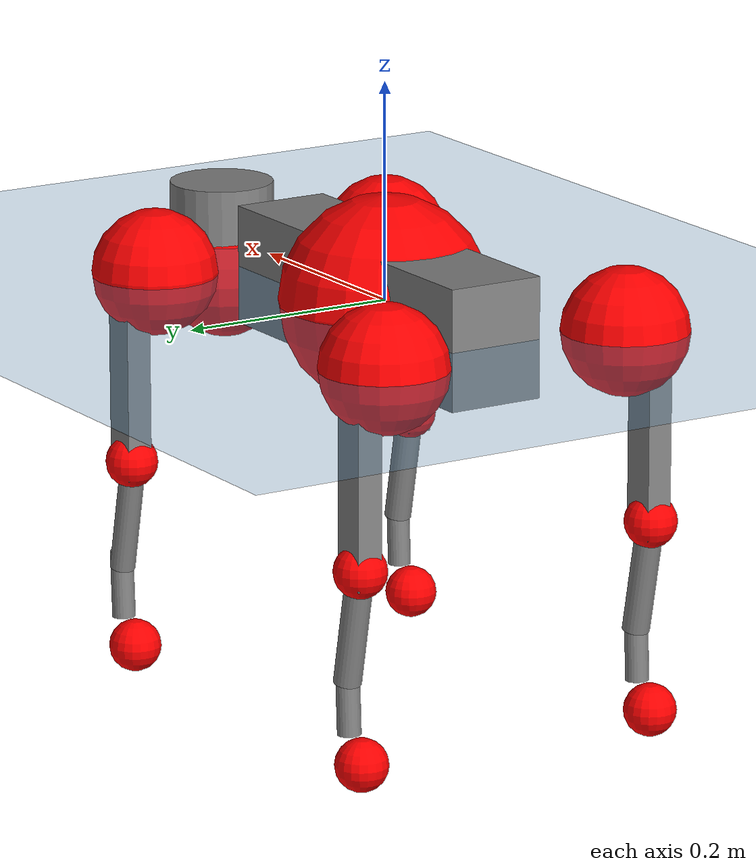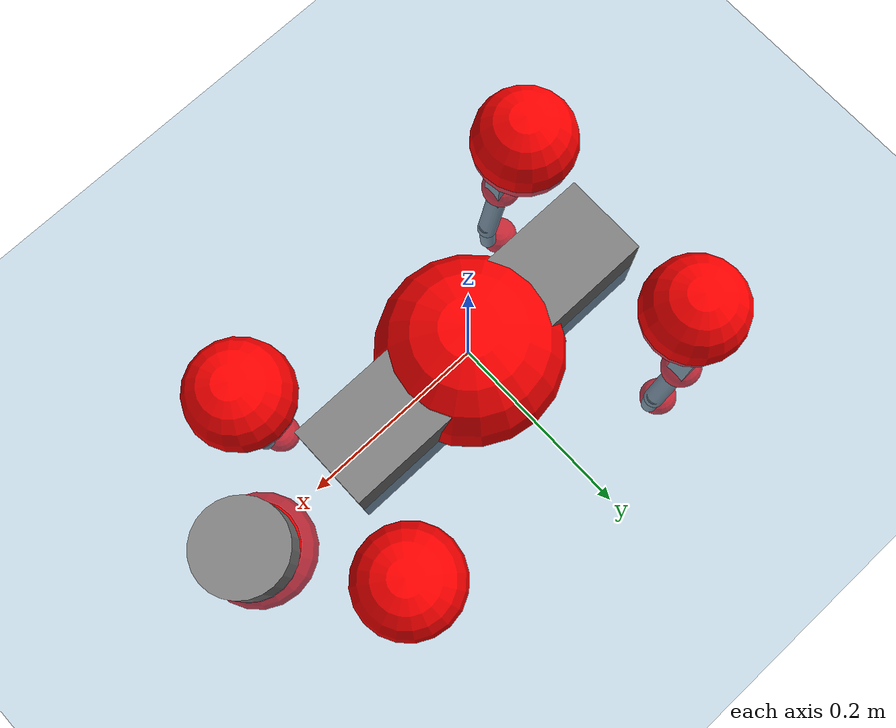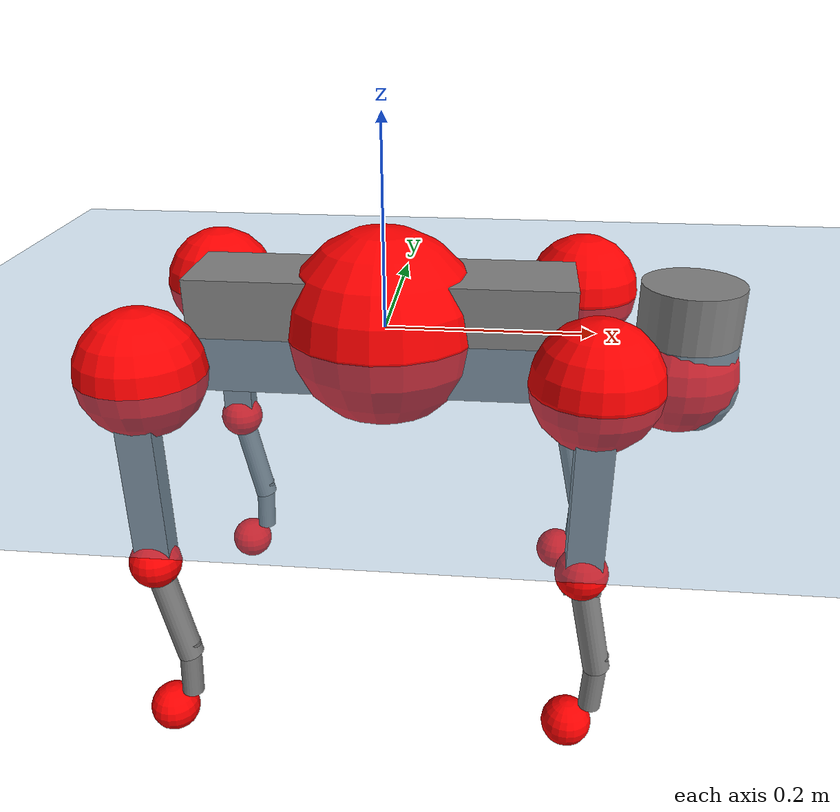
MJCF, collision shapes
<mujoco model="go2">
  <compiler angle="radian" assetdir="assets" balanceinertia="true" inertiafromgeom="false"/>

  <option timestep="0.005" density="1.2" viscosity="2e-05"/>

  <size nkey="1"/>

  <visual>
    <quality shadowsize="8192"/>
    <map shadowclip="0.5"/>
  </visual>

  <default>
    <default class="/">
      <geom contype="0" conaffinity="0" group="1" solref="-1000 -80"/>
      <site size="0.01 0.005 0.005" group="5"/>
      <general forcelimited="true" biastype="affine" gainprm="20" biasprm="0 -20 -0.5"/>
      <default class="go2">
        <joint armature="0.01" damping="0.01" frictionloss="0.2"/>
        <geom condim="1" margin="0.001"/>
        <default class="visual">
          <geom type="mesh" group="2"/>
        </default>
        <default class="collision">
          <geom group="3"/>
          <default class="foot">
            <geom size="0.022 0 0" condim="6" priority="1" friction="0.8 0.02 0.01" solimp="0.015 1 0.022"/>
          </default>
        </default>
        <default class="reward_collision_sphere">
          <geom group="5" rgba="1 0 0 1"/>
        </default>
      </default>
    </default>
  </default>

  <asset>
    <texture type="skybox" colorspace="auto" name="//unnamed_texture_0" builtin="gradient" rgb1="0.95 0.95 0.95" rgb2="0.95 0.95 0.95" width="100" height="600"/>
    <texture type="2d" colorspace="auto" name="texplane" builtin="checker" rgb1="0.345 0.575 0.748" rgb2="0.345 0.575 0.748" markrgb="1 1 1" width="512" height="512"/>
    <material name="MatPlane" class="/" texture="texplane" texuniform="true" texrepeat="2 2" specular="0.9"/>
    <material name="metal" class="/" rgba="0.9 0.95 0.95 1"/>
    <material name="black" class="/" rgba="0 0 0 1"/>
    <material name="white" class="/"/>
    <material name="gray" class="/" rgba="0.671705 0.692426 0.77427 1"/>
    <mesh name="base_0" class="/" file="base_0.obj"/>
    <mesh name="base_1" class="/" file="base_1.obj"/>
    <mesh name="base_2" class="/" file="base_2.obj"/>
    <mesh name="base_3" class="/" file="base_3.obj"/>
    <mesh name="base_4" class="/" file="base_4.obj"/>
    <mesh name="hip_0" class="/" file="hip_0.obj"/>
    <mesh name="hip_1" class="/" file="hip_1.obj"/>
    <mesh name="thigh_0" class="/" file="thigh_0.obj"/>
    <mesh name="thigh_1" class="/" file="thigh_1.obj"/>
    <mesh name="thigh_mirror_0" class="/" file="thigh_mirror_0.obj"/>
    <mesh name="thigh_mirror_1" class="/" file="thigh_mirror_1.obj"/>
    <mesh name="calf_0" class="/" file="calf_0.obj"/>
    <mesh name="calf_1" class="/" file="calf_1.obj"/>
    <mesh name="calf_mirror_0" class="/" file="calf_mirror_0.obj"/>
    <mesh name="calf_mirror_1" class="/" file="calf_mirror_1.obj"/>
    <mesh name="foot" class="/" file="foot.obj"/>
  </asset>

  <worldbody>
    <geom name="floor" class="/" size="100 100 0.125" type="plane" group="0" material="MatPlane"/>
    <light name="toplight_shadow" class="/" pos="0 0 5" dir="0.0990148 0.0990148 -0.990148" type="directional" ambient="0.04 0.04 0.04" diffuse="0.55 0.55 0.55" specular="0.12 0.12 0.12"/>
    <light name="toplight_fill" class="/" pos="0 0 5" dir="0.0990148 0.0990148 -0.990148" type="directional" castshadow="false" ambient="0.04 0.04 0.04" diffuse="0.3 0.3 0.3" specular="0.08 0.08 0.08"/>
    <body name="trunk" childclass="go2" pos="-0.0014744 0.000329971 0.000834205" quat="1 -0.000157745 8.55656e-05 -8.27504e-06">
      <inertial pos="0.0193309 -0.000161448 -0.0043661" quat="-0.00111631 0.714949 0.00158244 0.699174" mass="6.20008" diaginertia="0.112798 0.132538 0.00936136"/>
      <joint name="//unnamed_joint_0" type="free" armature="0" damping="0" frictionloss="0"/>
      <geom name="//unnamed_geom_1" class="visual" material="black" mesh="base_0"/>
      <geom name="//unnamed_geom_2" class="visual" material="black" mesh="base_1"/>
      <geom name="//unnamed_geom_3" class="visual" material="black" mesh="base_2"/>
      <geom name="//unnamed_geom_4" class="visual" material="white" mesh="base_3"/>
      <geom name="//unnamed_geom_5" class="visual" material="gray" mesh="base_4"/>
      <geom name="trunk_1" class="collision" size="0.181425 0.045091 0.0549773" type="box"/>
      <geom name="trunk_2" class="collision" size="0.0482257 0.0434031" pos="0.287681 0 0.00823053" type="cylinder"/>
      <geom name="trunk_3" class="collision" size="0.0453322" pos="0.295756 0 -0.0493832"/>
      <geom name="//unnamed_geom_9" class="reward_collision_sphere" size="0.0964514"/>
      <geom name="//unnamed_geom_10" class="reward_collision_sphere" size="0.0578708" pos="0.282634 0 -0.0370374"/>
      <site name="imu" pos="-0.0273965 -0.00360415 0.0356402" size="0.00964514"/>
      <camera name="track" pos="0 -2.12216 0" quat="0.707107 0.707107 0 0" mode="trackcom"/>
      <camera name="ego_camera" pos="0.314935 0 0.0370374" quat="-0.5 -0.5 0.5 0.5"/>
      <body name="FL_hip" pos="0.195492 0.0505112 0.000970973" quat="1 7.18553e-05 0.000697489 3.0859e-05">
        <inertial pos="-0.00709147 0.00319898 0.000817869" quat="0.49719 0.49853 0.505452 0.498786" mass="0.61054" diaginertia="0.000929607 0.000797212 0.000180985"/>
        <joint name="FL_hip_joint" pos="0 0 0" axis="0.999998 -0.00123884 0.00146697" stiffness="0.00118128" range="-1.04572 1.0314" armature="0.00967066" damping="0.00454164" frictionloss="0.184066"/>
        <geom name="//unnamed_geom_11" class="visual" material="metal" mesh="hip_0"/>
        <geom name="//unnamed_geom_12" class="visual" material="gray" mesh="hip_1"/>
        <geom name="//unnamed_geom_13" class="collision" size="0.0443676 0.0192903" pos="0 0.0848865 0" quat="0.707107 0.707107 0 0" type="cylinder"/>
        <geom name="//unnamed_geom_14" class="reward_collision_sphere" size="0.0578708" pos="0 0.0742757 0"/>
        <body name="FL_thigh" pos="-0.00071881 0.101922 0.000826684" quat="1 -0.000246938 5.70717e-05 1.88453e-06">
          <inertial pos="-0.00245058 -0.0229808 -0.0258453" quat="0.829533 0.0847575 -0.0200632 0.551623" mass="1.03659" diaginertia="0.00623304 0.00786714 0.000336195"/>
          <joint name="FL_thigh_joint" pos="0 0 0" axis="-0.000386633 1 -0.00074919" stiffness="0.0131766" range="-1.57574 3.49911" armature="0.00961311" damping="0" frictionloss="0.183343"/>
          <geom name="//unnamed_geom_15" class="visual" material="metal" mesh="thigh_0"/>
          <geom name="//unnamed_geom_16" class="visual" material="gray" mesh="thigh_1"/>
          <geom name="//unnamed_geom_17" class="collision" size="0.102721 0.0118153 0.0163967" pos="0 0 -0.0876551" quat="0.707107 0 0.707107 0" type="box"/>
          <body name="FL_calf" pos="-0.000779545 -0.000252981 -0.175562" quat="1 0.000162905 0.000183443 -0.000237343">
            <inertial pos="0.00563633 -0.00146755 -0.115991" quat="0.707845 0.00218025 -0.00605195 0.706339" mass="0.216052" diaginertia="0.00157249 0.00194555 2.02116e-05"/>
            <joint name="FL_calf_joint" pos="0 0 0" axis="0.00764874 0.999969 0.00200153" stiffness="0.00119867" range="-2.73407 -0.845477" armature="0.0101316" damping="0.00630727" frictionloss="0.187889"/>
            <geom name="//unnamed_geom_18" class="visual" material="gray" mesh="calf_0"/>
            <geom name="//unnamed_geom_19" class="visual" material="black" mesh="calf_1"/>
            <geom name="FL_calf0" class="collision" size="0.0115742 0.0578708" pos="0.00807526 0 -0.0493832" quat="0.994493 0 -0.104807 0" type="cylinder"/>
            <geom name="//unnamed_geom_21" class="collision" size="0.0106097 0.0313467" pos="0.0201882 0 -0.121812" quat="0.999688 0 0.0249974 0" type="cylinder"/>
            <geom name="//unnamed_geom_22" class="visual" pos="0 0 -0.17531" quat="1 0 0 0" material="black" mesh="foot"/>
            <geom name="FL_foot" class="foot" size="0.0149846" pos="-0.00201882 0 -0.17531"/>
            <geom name="//unnamed_geom_24" class="reward_collision_sphere" size="0.0241128"/>
            <geom name="//unnamed_geom_25" class="reward_collision_sphere" size="0.0241128" pos="-0.00201882 0 -0.17531"/>
            <site name="FL_foot" class="foot" pos="-0.00201882 0 -0.17531" size="0.00964514"/>
          </body>
        </body>
      </body>
      <body name="FR_hip" pos="0.195365 -0.047785 0.000941391" quat="1 -0.000283831 4.48074e-05 -6.07104e-05">
        <inertial pos="-0.00470263 -0.00201752 -0.00031227" quat="0.497353 0.50589 0.498923 0.497786" mass="0.621302" diaginertia="0.000916109 0.000795488 0.000181943"/>
        <joint name="FR_hip_joint" pos="0 0 0" axis="0.999991 0.00175158 0.00383727" stiffness="0.00113944" range="-1.06686 1.05006" armature="0.00884014" damping="0.0204231" frictionloss="0.20791"/>
        <geom name="//unnamed_geom_26" class="visual" pos="0 2.0736e-09 8.89411e-08" quat="4.63268e-05 1 0 0" material="metal" mesh="hip_0"/>
        <geom name="//unnamed_geom_27" class="visual" pos="0 3.36156e-09 -2.19985e-07" quat="4.63268e-05 1 0 0" material="gray" mesh="hip_1"/>
        <geom name="//unnamed_geom_28" class="collision" size="0.0443676 0.0192903" pos="0 -0.0848865 0" quat="0.707107 0.707107 0 0" type="cylinder"/>
        <geom name="//unnamed_geom_29" class="reward_collision_sphere" size="0.0578708" pos="0 -0.0742757 0"/>
        <body name="FR_thigh" pos="0.000101961 -0.101319 0.00180751" quat="1 0.00046007 3.96228e-05 -0.000271861">
          <inertial pos="-0.00337491 0.0220682 -0.0264848" quat="0.551865 -0.0223918 0.0835796 0.829432" mass="1.01923" diaginertia="0.0063046 0.00802197 0.000333591"/>
          <joint name="FR_thigh_joint" pos="0 0 0" axis="-0.00141886 -0.999992 -0.00379877" range="-3.48465 1.5871" armature="0.00964742" damping="0.010637" frictionloss="0.184009"/>
          <geom name="//unnamed_geom_30" class="visual" material="metal" mesh="thigh_mirror_0"/>
          <geom name="//unnamed_geom_31" class="visual" material="gray" mesh="thigh_mirror_1"/>
          <geom name="//unnamed_geom_32" class="collision" size="0.102721 0.0118153 0.0163967" pos="0 0 -0.0876551" quat="0.707107 0 0.707107 0" type="box"/>
          <body name="FR_calf" pos="-0.00102142 0.000842343 -0.174679" quat="1 4.81481e-05 -7.60246e-06 -8.33085e-05">
            <inertial pos="0.00543304 0.000894133 -0.116261" quat="0.704076 -0.00455877 0.00405359 0.710098" mass="0.217475" diaginertia="0.0015833 0.00198474 2.01156e-05"/>
            <joint name="FR_calf_joint" pos="0 0 0" axis="-0.00706207 -0.999973 -0.00220865" stiffness="0.00119944" range="0.833023 2.71996" armature="0.00961902" damping="0.00525232" frictionloss="0.193234"/>
            <geom name="//unnamed_geom_33" class="visual" material="gray" mesh="calf_mirror_0"/>
            <geom name="//unnamed_geom_34" class="visual" material="black" mesh="calf_mirror_1"/>
            <geom name="FR_calf0" class="collision" size="0.0125387 0.0578708" pos="0.0100941 0 -0.0493832" quat="0.995004 0 -0.0998334 0" type="cylinder"/>
            <geom name="//unnamed_geom_36" class="collision" size="0.0106097 0.0313467" pos="0.0201882 0 -0.121812" quat="0.999688 0 0.0249974 0" type="cylinder"/>
            <geom name="//unnamed_geom_37" class="visual" pos="0 0 -0.17531" quat="1 0 0 0" material="black" mesh="foot"/>
            <geom name="FR_foot" class="foot" size="0.022185" pos="-0.00201882 0 -0.17531"/>
            <geom name="//unnamed_geom_39" class="reward_collision_sphere" size="0.0241128"/>
            <geom name="//unnamed_geom_40" class="reward_collision_sphere" size="0.0241128" pos="-0.00201882 0 -0.17531"/>
            <site name="FR_foot" class="foot" pos="-0.00201882 0 -0.17531" size="0.00964514"/>
          </body>
        </body>
      </body>
      <body name="RL_hip" pos="-0.194252 0.0482022 -0.00116159" quat="0.999999 -9.03101e-05 -0.000119162 0.00107369">
        <inertial pos="0.00666727 0.00182327 0.000537219" quat="0.505168 0.498424 0.496981 0.499387" mass="0.608112" diaginertia="0.000924437 0.000797998 0.000180867"/>
        <joint name="RL_hip_joint" pos="0 0 0" axis="-0.999846 0.0173272 -0.00294583" range="-1.05869 1.0577" armature="0.00957259" damping="0.0158448" frictionloss="0.185177"/>
        <geom name="//unnamed_geom_41" class="visual" pos="-1.62344e-09 0 -3.18232e-07" quat="4.63268e-05 0 1 0" material="metal" mesh="hip_0"/>
        <geom name="//unnamed_geom_42" class="visual" pos="-2.6318e-09 0 -2.82227e-07" quat="4.63268e-05 0 1 0" material="gray" mesh="hip_1"/>
        <geom name="//unnamed_geom_43" class="collision" size="0.0443676 0.0192903" pos="0 0.0848865 0" quat="0.707107 0.707107 0 0" type="cylinder"/>
        <geom name="//unnamed_geom_44" class="reward_collision_sphere" size="0.0578708" pos="0 0.0742757 0"/>
        <body name="RL_thigh" pos="-0.00149321 0.0996823 -0.000521874" quat="1 0.000418625 -0.000509391 -0.000230188">
          <inertial pos="-0.00367364 -0.0240336 -0.0274456" quat="0.830678 0.0825103 -0.0171037 0.55034" mass="1.02653" diaginertia="0.00621592 0.0078402 0.000329594"/>
          <joint name="RL_thigh_joint" pos="0 0 0" axis="-0.00752267 0.999971 0.00108511" range="-0.532383 4.53848" armature="0.00985533" damping="0" frictionloss="0.19933"/>
          <geom name="//unnamed_geom_45" class="visual" material="metal" mesh="thigh_0"/>
          <geom name="//unnamed_geom_46" class="visual" material="gray" mesh="thigh_1"/>
          <geom name="//unnamed_geom_47" class="collision" size="0.102721 0.0118153 0.0163967" pos="0 0 -0.0876551" quat="0.707107 0 0.707107 0" type="box"/>
          <body name="RL_calf" pos="0.000451382 -0.000730454 -0.176988" quat="1 -0.000155137 0.000100417 -0.00014567">
            <inertial pos="0.00639315 -0.000615386 -0.117074" quat="0.710231 0.0013823 -0.00403719 0.703955" mass="0.217572" diaginertia="0.00156195 0.00196564 2.016e-05"/>
            <joint name="RL_calf_joint" pos="0 0 0" axis="0.0084102 0.999949 0.00563372" stiffness="1.53115e-05" range="-2.71785 -0.837805" armature="0.00996525" damping="0" frictionloss="0.196017"/>
            <geom name="//unnamed_geom_48" class="visual" material="gray" mesh="calf_0"/>
            <geom name="//unnamed_geom_49" class="visual" material="black" mesh="calf_1"/>
            <geom name="RL_calf0" class="collision" size="0.0125387 0.0578708" pos="0.0100941 0 -0.0493832" quat="0.995004 0 -0.0998334 0" type="cylinder"/>
            <geom name="//unnamed_geom_51" class="collision" size="0.0106097 0.0313467" pos="0.0201882 0 -0.121812" quat="0.999688 0 0.0249974 0" type="cylinder"/>
            <geom name="//unnamed_geom_52" class="visual" pos="0 0 -0.17531" quat="1 0 0 0" material="black" mesh="foot"/>
            <geom name="RL_foot" class="foot" size="0.0191843" pos="-0.00201882 0 -0.17531"/>
            <geom name="//unnamed_geom_54" class="reward_collision_sphere" size="0.0241128"/>
            <geom name="//unnamed_geom_55" class="reward_collision_sphere" size="0.0241128" pos="-0.00201882 0 -0.17531"/>
            <site name="RL_foot" class="foot" pos="-0.00201882 0 -0.17531" size="0.00964514"/>
          </body>
        </body>
      </body>
      <body name="RR_hip" pos="-0.195447 -0.0518712 -0.00208671" quat="1 7.18871e-05 -4.5791e-05 0.000234488">
        <inertial pos="0.00553142 -0.00167039 -9.36437e-05" quat="0.503218 0.497218 0.494707 0.504787" mass="0.609745" diaginertia="0.000919015 0.000797103 0.00018371"/>
        <joint name="RR_hip_joint" pos="0 0 0" axis="-0.999998 0.00194334 0.00109573" range="-1.0368 1.04445" armature="0.0103703" damping="0.0158305" frictionloss="0.185193"/>
        <geom name="//unnamed_geom_56" class="visual" pos="1.62523e-09 2.0736e-09 -4.07173e-07" quat="2.14617e-09 4.63268e-05 4.63268e-05 -1" material="metal" mesh="hip_0"/>
        <geom name="//unnamed_geom_57" class="visual" pos="2.62737e-09 3.36156e-09 -6.22413e-08" quat="2.14617e-09 4.63268e-05 4.63268e-05 -1" material="gray" mesh="hip_1"/>
        <geom name="//unnamed_geom_58" class="collision" size="0.0443676 0.0192903" pos="0 -0.0848865 0" quat="0.707107 0.707107 0 0" type="cylinder"/>
        <geom name="//unnamed_geom_59" class="reward_collision_sphere" size="0.0578708" pos="0 -0.0742757 0"/>
        <body name="RR_thigh" pos="0.000811638 -0.101687 -0.00214692" quat="1 -5.02799e-05 8.97314e-08 2.65157e-06">
          <inertial pos="-0.00349356 0.0245706 -0.027281" quat="0.551557 -0.0191055 0.0850351 0.829571" mass="1.05637" diaginertia="0.00636569 0.00790986 0.000330596"/>
          <joint name="RR_thigh_joint" pos="0 0 0" axis="0.00161316 -0.999993 0.00331841" range="-4.56042 0.510197" armature="0.00918078" damping="0.0179338" frictionloss="0.194072"/>
          <geom name="//unnamed_geom_60" class="visual" material="metal" mesh="thigh_mirror_0"/>
          <geom name="//unnamed_geom_61" class="visual" material="gray" mesh="thigh_mirror_1"/>
          <geom name="//unnamed_geom_62" class="collision" size="0.102721 0.0118153 0.0163967" pos="0 0 -0.0876551" quat="0.707107 0 0.707107 0" type="box"/>
          <body name="RR_calf" pos="-0.00145724 -0.00139469 -0.176507" quat="1 -0.000117295 0.000188161 9.67963e-05">
            <inertial pos="0.00801118 0.000393866 -0.117481" quat="0.702735 -0.00186831 -0.00149631 0.711448" mass="0.216925" diaginertia="0.00151272 0.00193357 1.95448e-05"/>
            <joint name="RR_calf_joint" pos="0 0 0" axis="-0.0016594 -0.999989 0.00429167" stiffness="0.000741306" range="0.835099 2.76528" armature="0.00957458" damping="0.012035" frictionloss="0.191385"/>
            <geom name="//unnamed_geom_63" class="visual" material="gray" mesh="calf_mirror_0"/>
            <geom name="//unnamed_geom_64" class="visual" material="black" mesh="calf_mirror_1"/>
            <geom name="RR_calf0" class="collision" size="0.0125387 0.0578708" pos="0.0100941 0 -0.0493832" quat="0.995004 0 -0.0998334 0" type="cylinder"/>
            <geom name="//unnamed_geom_66" class="collision" size="0.0106097 0.0313467" pos="0.0201882 0 -0.121812" quat="0.999688 0 0.0249974 0" type="cylinder"/>
            <geom name="//unnamed_geom_67" class="visual" pos="0 0 -0.17531" quat="1 0 0 0" material="black" mesh="foot"/>
            <geom name="RR_foot" class="foot" size="0.0230855" pos="-0.00201882 0 -0.17531"/>
            <geom name="//unnamed_geom_69" class="reward_collision_sphere" size="0.0241128"/>
            <geom name="//unnamed_geom_70" class="reward_collision_sphere" size="0.0241128" pos="-0.00201882 0 -0.17531"/>
            <site name="RR_foot" class="foot" pos="-0.00201882 0 -0.17531" size="0.00964514"/>
          </body>
        </body>
      </body>
    </body>
  </worldbody>

  <contact>
    <pair class="/" geom1="floor" geom2="FL_foot" name="//unnamed_contact_0"/>
    <pair class="/" geom1="floor" geom2="FR_foot" name="//unnamed_contact_1"/>
    <pair class="/" geom1="floor" geom2="RL_foot" name="//unnamed_contact_2"/>
    <pair class="/" geom1="floor" geom2="RR_foot" name="//unnamed_contact_3"/>
  </contact>

  <actuator>
    <general name="FL_hip" class="/" joint="FL_hip_joint" forcerange="-22.7548 22.7548" gainprm="19.3241" biasprm="0 -19.3241 -0.484491"/>
    <general name="FL_thigh" class="/" joint="FL_thigh_joint" forcerange="-23.7301 23.7301" gainprm="19.3241" biasprm="0 -19.3241 -0.484491"/>
    <general name="FL_calf" class="/" joint="FL_calf_joint" forcerange="-43.4781 43.4781" gainprm="19.3241" biasprm="0 -19.3241 -0.484491"/>
    <general name="FR_hip" class="/" joint="FR_hip_joint" forcerange="-24.3571 24.3571" gainprm="19.3241" biasprm="0 -19.3241 -0.484491"/>
    <general name="FR_thigh" class="/" joint="FR_thigh_joint" forcerange="-22.9501 22.9501" gainprm="19.3241" biasprm="0 -19.3241 -0.484491"/>
    <general name="FR_calf" class="/" joint="FR_calf_joint" forcerange="-43.5725 43.5725" gainprm="19.3241" biasprm="0 -19.3241 -0.484491"/>
    <general name="RL_hip" class="/" joint="RL_hip_joint" forcerange="-22.5015 22.5015" gainprm="19.3241" biasprm="0 -19.3241 -0.484491"/>
    <general name="RL_thigh" class="/" joint="RL_thigh_joint" forcerange="-22.6515 22.6515" gainprm="19.3241" biasprm="0 -19.3241 -0.484491"/>
    <general name="RL_calf" class="/" joint="RL_calf_joint" forcerange="-44.6362 44.6362" gainprm="19.3241" biasprm="0 -19.3241 -0.484491"/>
    <general name="RR_hip" class="/" joint="RR_hip_joint" forcerange="-23.3292 23.3292" gainprm="19.3241" biasprm="0 -19.3241 -0.484491"/>
    <general name="RR_thigh" class="/" joint="RR_thigh_joint" forcerange="-23.203 23.203" gainprm="19.3241" biasprm="0 -19.3241 -0.484491"/>
    <general name="RR_calf" class="/" joint="RR_calf_joint" forcerange="-46.0034 46.0034" gainprm="19.3241" biasprm="0 -19.3241 -0.484491"/>
  </actuator>

  <sensor>
    <gyro site="imu" name="imu_angular_velocity"/>
    <velocimeter site="imu" name="imu_linear_velocity"/>
    <framelinvel objtype="site" objname="FL_foot" name="FL_foot_global_linear_velocity"/>
    <framelinvel objtype="site" objname="FR_foot" name="FR_foot_global_linear_velocity"/>
    <framelinvel objtype="site" objname="RL_foot" name="RL_foot_global_linear_velocity"/>
    <framelinvel objtype="site" objname="RR_foot" name="RR_foot_global_linear_velocity"/>
  </sensor>

  <keyframe>
    <key name="home" qpos="0 0 0.325 1 0 0 0 0.1 0.8 -1.5 -0.1 -0.8 1.5 -0.1 0.8 -1.5 0.1 -0.8 1.5"/>
  </keyframe>
</mujoco>
